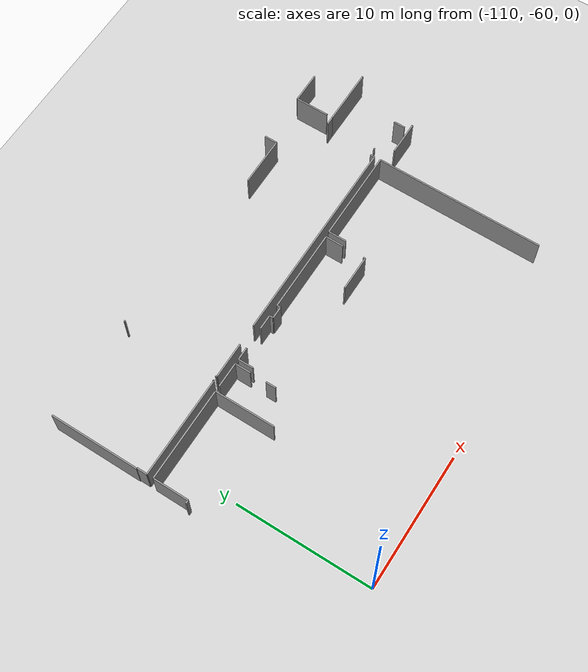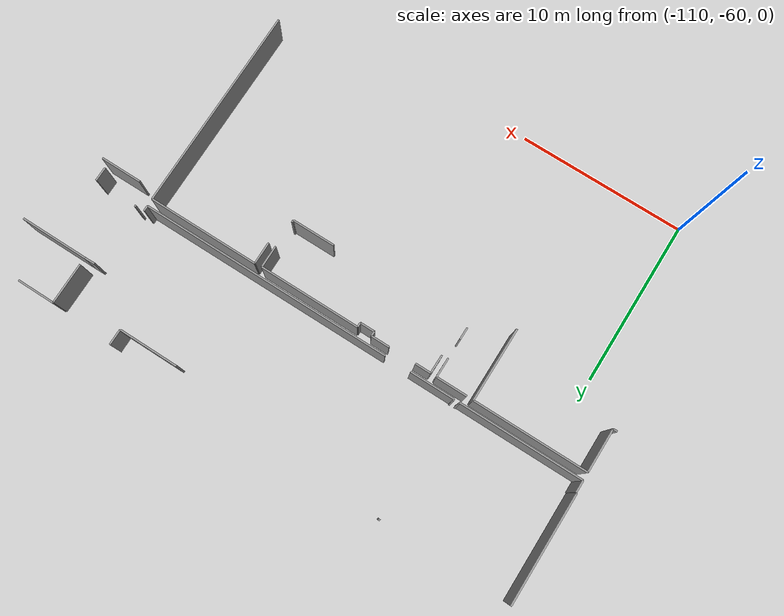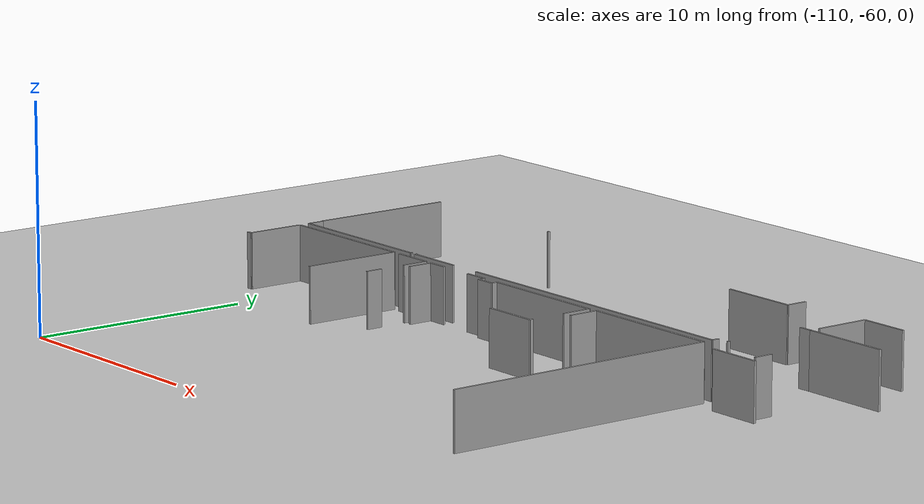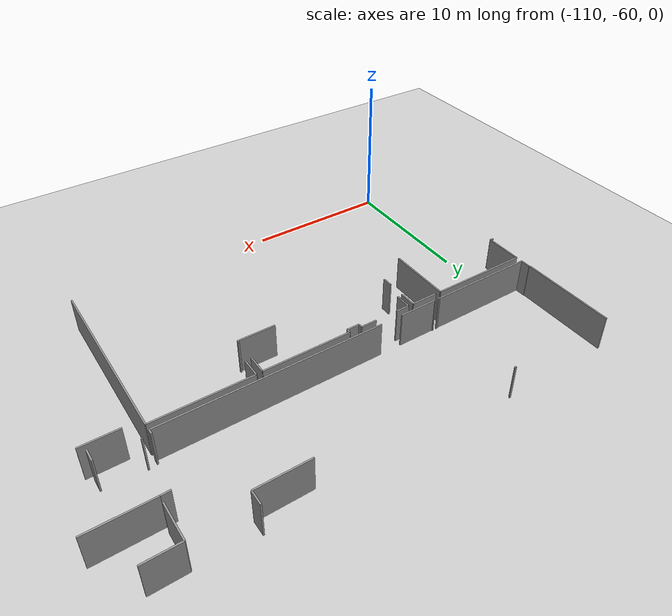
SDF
<sdf version="1.6">
 <world name="default">
  <model name="ground_plane">
   <static>1</static>
   <link name="link">
    <collision name="collision">
     <geometry><plane><normal>0 0 1</normal><size>100 100</size></plane></geometry>
     <surface><friction><ode><mu>100</mu><mu2>50</mu2></ode></friction></surface>
    </collision>
    <visual name="visual">
     <cast_shadows>0</cast_shadows>
     <geometry><plane><normal>0 0 1</normal><size>100 100</size></plane></geometry>
     <material>
      <script><uri>file://media/materials/scripts/gazebo.material</uri><name>Gazebo/Grey</name></script>
     </material>
    </visual>
   </link>
  </model>
  <model name="0510035520_A_40_1_103">
   <static>1</static>
   <link name="Wall_439">
    <collision name="Wall_439_Collision">
     <geometry><box><size>0.0865476741899 0.1 2.5</size></box></geometry>
     <pose>0.0432738370949 0 1.25 0 0 0</pose>
    </collision>
    <visual name="Wall_439_Visual">
     <pose>0.0432738370949 0 1.25 0 0 0</pose>
     <geometry><box><size>0.0865476741899 0.1 2.5</size></box></geometry>
     <material>
      <script><uri>file://media/materials/scripts/gazebo.material</uri><name>Gazebo/Grey</name></script>
      <ambient>1 1 1 1</ambient>
     </material>
    </visual>
    <pose>7.60781974734 -113.361209637 0 0 0 -1.57079632679</pose>
   </link>
   <link name="Wall_440">
    <collision name="Wall_440_Collision">
     <geometry><box><size>7.35528327866 0.1 2.5</size></box></geometry>
     <pose>3.67764163933 0 1.25 0 0 0</pose>
    </collision>
    <visual name="Wall_440_Visual">
     <pose>3.67764163933 0 1.25 0 0 0</pose>
     <geometry><box><size>7.35528327866 0.1 2.5</size></box></geometry>
     <material>
      <script><uri>file://media/materials/scripts/gazebo.material</uri><name>Gazebo/Grey</name></script>
      <ambient>1 1 1 1</ambient>
     </material>
    </visual>
    <pose>7.60781974734 -113.447757311 0 0 0 3.14159265359</pose>
   </link>
   <link name="Wall_441">
    <collision name="Wall_441_Collision">
     <geometry><box><size>0.728421773974 0.1 2.5</size></box></geometry>
     <pose>0.364210886987 0 1.25 0 0 0</pose>
    </collision>
    <visual name="Wall_441_Visual">
     <pose>0.364210886987 0 1.25 0 0 0</pose>
     <geometry><box><size>0.728421773974 0.1 2.5</size></box></geometry>
     <material>
      <script><uri>file://media/materials/scripts/gazebo.material</uri><name>Gazebo/Grey</name></script>
      <ambient>1 1 1 1</ambient>
     </material>
    </visual>
    <pose>0.252536468677 -113.447757311 0 0 0 1.57079632679</pose>
   </link>
   <link name="Wall_442">
    <collision name="Wall_442_Collision">
     <geometry><box><size>0.0456849893084 0.1 2.5</size></box></geometry>
     <pose>0.0228424946542 0 1.25 0 0 0</pose>
    </collision>
    <visual name="Wall_442_Visual">
     <pose>0.0228424946542 0 1.25 0 0 0</pose>
     <geometry><box><size>0.0456849893084 0.1 2.5</size></box></geometry>
     <material>
      <script><uri>file://media/materials/scripts/gazebo.material</uri><name>Gazebo/Grey</name></script>
      <ambient>1 1 1 1</ambient>
     </material>
    </visual>
    <pose>0.252536468677 -112.719335537 0 0 0 3.14159265359</pose>
   </link>
   <link name="Wall_443">
    <collision name="Wall_443_Collision">
     <geometry><box><size>6.5268621392 0.1 2.5</size></box></geometry>
     <pose>3.2634310696 0 1.25 0 0 0</pose>
    </collision>
    <visual name="Wall_443_Visual">
     <pose>3.2634310696 0 1.25 0 0 0</pose>
     <geometry><box><size>6.5268621392 0.1 2.5</size></box></geometry>
     <material>
      <script><uri>file://media/materials/scripts/gazebo.material</uri><name>Gazebo/Grey</name></script>
      <ambient>1 1 1 1</ambient>
     </material>
    </visual>
    <pose>0.206851479369 -112.719335537 0 0 0 1.57079632679</pose>
   </link>
   <link name="Wall_447">
    <collision name="Wall_447_Collision">
     <geometry><box><size>0.244668498296 0.1 2.5</size></box></geometry>
     <pose>0.122334249148 0 1.25 0 0 0</pose>
    </collision>
    <visual name="Wall_447_Visual">
     <pose>0.122334249148 0 1.25 0 0 0</pose>
     <geometry><box><size>0.244668498296 0.1 2.5</size></box></geometry>
     <material>
      <script><uri>file://media/materials/scripts/gazebo.material</uri><name>Gazebo/Grey</name></script>
      <ambient>1 1 1 1</ambient>
     </material>
    </visual>
    <pose>0.0106598308386 -116.529463646 0 0 0 0.0</pose>
   </link>
   <link name="Wall_448">
    <collision name="Wall_448_Collision">
     <geometry><box><size>2.60099872463 0.1 2.5</size></box></geometry>
     <pose>1.30049936231 0 1.25 0 0 0</pose>
    </collision>
    <visual name="Wall_448_Visual">
     <pose>1.30049936231 0 1.25 0 0 0</pose>
     <geometry><box><size>2.60099872463 0.1 2.5</size></box></geometry>
     <material>
      <script><uri>file://media/materials/scripts/gazebo.material</uri><name>Gazebo/Grey</name></script>
      <ambient>1 1 1 1</ambient>
     </material>
    </visual>
    <pose>0.255328329135 -116.529463646 0 0 0 1.57079632679</pose>
   </link>
   <link name="Wall_449">
    <collision name="Wall_449_Collision">
     <geometry><box><size>6.81264712787 0.1 2.5</size></box></geometry>
     <pose>3.40632356394 0 1.25 0 0 0</pose>
    </collision>
    <visual name="Wall_449_Visual">
     <pose>3.40632356394 0 1.25 0 0 0</pose>
     <geometry><box><size>6.81264712787 0.1 2.5</size></box></geometry>
     <material>
      <script><uri>file://media/materials/scripts/gazebo.material</uri><name>Gazebo/Grey</name></script>
      <ambient>1 1 1 1</ambient>
     </material>
    </visual>
    <pose>0.255328329135 -113.928464921 0 0 0 0.0</pose>
   </link>
   <link name="Wall_450">
    <collision name="Wall_450_Collision">
     <geometry><box><size>4.42205315956 0.1 2.5</size></box></geometry>
     <pose>2.21102657978 0 1.25 0 0 0</pose>
    </collision>
    <visual name="Wall_450_Visual">
     <pose>2.21102657978 0 1.25 0 0 0</pose>
     <geometry><box><size>4.42205315956 0.1 2.5</size></box></geometry>
     <material>
      <script><uri>file://media/materials/scripts/gazebo.material</uri><name>Gazebo/Grey</name></script>
      <ambient>1 1 1 1</ambient>
     </material>
    </visual>
    <pose>7.06797545701 -113.928464921 0 0 0 -1.57079632679</pose>
   </link>
   <link name="Wall_466">
    <collision name="Wall_466_Collision">
     <geometry><box><size>1.84922684501 0.1 2.5</size></box></geometry>
     <pose>0.924613422504 0 1.25 0 0 0</pose>
    </collision>
    <visual name="Wall_466_Visual">
     <pose>0.924613422504 0 1.25 0 0 0</pose>
     <geometry><box><size>1.84922684501 0.1 2.5</size></box></geometry>
     <material>
      <script><uri>file://media/materials/scripts/gazebo.material</uri><name>Gazebo/Grey</name></script>
      <ambient>1 1 1 1</ambient>
     </material>
    </visual>
    <pose>7.46035875407 -113.936332891 0 0 0 0.0</pose>
   </link>
   <link name="Wall_467">
    <collision name="Wall_467_Collision">
     <geometry><box><size>1.16192156141 0.1 2.5</size></box></geometry>
     <pose>0.580960780706 0 1.25 0 0 0</pose>
    </collision>
    <visual name="Wall_467_Visual">
     <pose>0.580960780706 0 1.25 0 0 0</pose>
     <geometry><box><size>1.16192156141 0.1 2.5</size></box></geometry>
     <material>
      <script><uri>file://media/materials/scripts/gazebo.material</uri><name>Gazebo/Grey</name></script>
      <ambient>1 1 1 1</ambient>
     </material>
    </visual>
    <pose>9.30958559908 -113.936332891 0 0 0 -1.57079632679</pose>
   </link>
   <link name="Wall_468">
    <collision name="Wall_468_Collision">
     <geometry><box><size>0.731213634431 0.1 2.5</size></box></geometry>
     <pose>0.365606817216 0 1.25 0 0 0</pose>
    </collision>
    <visual name="Wall_468_Visual">
     <pose>0.365606817216 0 1.25 0 0 0</pose>
     <geometry><box><size>0.731213634431 0.1 2.5</size></box></geometry>
     <material>
      <script><uri>file://media/materials/scripts/gazebo.material</uri><name>Gazebo/Grey</name></script>
      <ambient>1 1 1 1</ambient>
     </material>
    </visual>
    <pose>9.30958559908 -116.282003287 0 0 0 -1.57079632679</pose>
   </link>
   <link name="Wall_470">
    <collision name="Wall_470_Collision">
     <geometry><box><size>0.935019447846 0.1 2.5</size></box></geometry>
     <pose>0.467509723923 0 1.25 0 0 0</pose>
    </collision>
    <visual name="Wall_470_Visual">
     <pose>0.467509723923 0 1.25 0 0 0</pose>
     <geometry><box><size>0.935019447846 0.1 2.5</size></box></geometry>
     <material>
      <script><uri>file://media/materials/scripts/gazebo.material</uri><name>Gazebo/Grey</name></script>
      <ambient>1 1 1 1</ambient>
     </material>
    </visual>
    <pose>9.67278126408 -113.943693251 0 0 0 0.0</pose>
   </link>
   <link name="Wall_471">
    <collision name="Wall_471_Collision">
     <geometry><box><size>1.0966935489 0.1 2.5</size></box></geometry>
     <pose>0.548346774449 0 1.25 0 0 0</pose>
    </collision>
    <visual name="Wall_471_Visual">
     <pose>0.548346774449 0 1.25 0 0 0</pose>
     <geometry><box><size>1.0966935489 0.1 2.5</size></box></geometry>
     <material>
      <script><uri>file://media/materials/scripts/gazebo.material</uri><name>Gazebo/Grey</name></script>
      <ambient>1 1 1 1</ambient>
     </material>
    </visual>
    <pose>12.2118514476 -113.943693251 0 0 0 0.0</pose>
   </link>
   <link name="Wall_472">
    <collision name="Wall_472_Collision">
     <geometry><box><size>0.27614037982 0.1 2.5</size></box></geometry>
     <pose>0.13807018991 0 1.25 0 0 0</pose>
    </collision>
    <visual name="Wall_472_Visual">
     <pose>0.13807018991 0 1.25 0 0 0</pose>
     <geometry><box><size>0.27614037982 0.1 2.5</size></box></geometry>
     <material>
      <script><uri>file://media/materials/scripts/gazebo.material</uri><name>Gazebo/Grey</name></script>
      <ambient>1 1 1 1</ambient>
     </material>
    </visual>
    <pose>13.3085449965 -113.943693251 0 0 0 -1.57079632679</pose>
   </link>
   <link name="Wall_473">
    <collision name="Wall_473_Collision">
     <geometry><box><size>0.873598517776 0.1 2.5</size></box></geometry>
     <pose>0.436799258888 0 1.25 0 0 0</pose>
    </collision>
    <visual name="Wall_473_Visual">
     <pose>0.436799258888 0 1.25 0 0 0</pose>
     <geometry><box><size>0.873598517776 0.1 2.5</size></box></geometry>
     <material>
      <script><uri>file://media/materials/scripts/gazebo.material</uri><name>Gazebo/Grey</name></script>
      <ambient>1 1 1 1</ambient>
     </material>
    </visual>
    <pose>13.3085449965 -114.21983363 0 0 0 0.0</pose>
   </link>
   <link name="Wall_474">
    <collision name="Wall_474_Collision">
     <geometry><box><size>0.271825686385 0.1 2.5</size></box></geometry>
     <pose>0.135912843193 0 1.25 0 0 0</pose>
    </collision>
    <visual name="Wall_474_Visual">
     <pose>0.135912843193 0 1.25 0 0 0</pose>
     <geometry><box><size>0.271825686385 0.1 2.5</size></box></geometry>
     <material>
      <script><uri>file://media/materials/scripts/gazebo.material</uri><name>Gazebo/Grey</name></script>
      <ambient>1 1 1 1</ambient>
     </material>
    </visual>
    <pose>14.1821435143 -114.21983363 0 0 0 1.57079632679</pose>
   </link>
   <link name="Wall_475">
    <collision name="Wall_475_Collision">
     <geometry><box><size>6.0248348678 0.1 2.5</size></box></geometry>
     <pose>3.0124174339 0 1.25 0 0 0</pose>
    </collision>
    <visual name="Wall_475_Visual">
     <pose>3.0124174339 0 1.25 0 0 0</pose>
     <geometry><box><size>6.0248348678 0.1 2.5</size></box></geometry>
     <material>
      <script><uri>file://media/materials/scripts/gazebo.material</uri><name>Gazebo/Grey</name></script>
      <ambient>1 1 1 1</ambient>
     </material>
    </visual>
    <pose>14.1821435143 -113.948007944 0 0 0 0.0</pose>
   </link>
   <link name="Wall_476">
    <collision name="Wall_476_Collision">
     <geometry><box><size>1.32334185697 0.1 2.5</size></box></geometry>
     <pose>0.661670928484 0 1.25 0 0 0</pose>
    </collision>
    <visual name="Wall_476_Visual">
     <pose>0.661670928484 0 1.25 0 0 0</pose>
     <geometry><box><size>1.32334185697 0.1 2.5</size></box></geometry>
     <material>
      <script><uri>file://media/materials/scripts/gazebo.material</uri><name>Gazebo/Grey</name></script>
      <ambient>1 1 1 1</ambient>
     </material>
    </visual>
    <pose>20.2069783821 -113.948007944 0 0 0 -1.57079632679</pose>
   </link>
   <link name="Wall_477">
    <collision name="Wall_477_Collision">
     <geometry><box><size>0.141877272352 0.1 2.5</size></box></geometry>
     <pose>0.0709386361762 0 1.25 0 0 0</pose>
    </collision>
    <visual name="Wall_477_Visual">
     <pose>0.0709386361762 0 1.25 0 0 0</pose>
     <geometry><box><size>0.141877272352 0.1 2.5</size></box></geometry>
     <material>
      <script><uri>file://media/materials/scripts/gazebo.material</uri><name>Gazebo/Grey</name></script>
      <ambient>1 1 1 1</ambient>
     </material>
    </visual>
    <pose>20.2069783821 -116.854842292 0 0 0 -1.57079632679</pose>
   </link>
   <link name="Wall_478">
    <collision name="Wall_478_Collision">
     <geometry><box><size>2.57130348158 0.1 2.5</size></box></geometry>
     <pose>1.28565174079 0 1.25 0 0 0</pose>
    </collision>
    <visual name="Wall_478_Visual">
     <pose>1.28565174079 0 1.25 0 0 0</pose>
     <geometry><box><size>2.57130348158 0.1 2.5</size></box></geometry>
     <material>
      <script><uri>file://media/materials/scripts/gazebo.material</uri><name>Gazebo/Grey</name></script>
      <ambient>1 1 1 1</ambient>
     </material>
    </visual>
    <pose>20.2069783821 -116.996719564 0 0 0 3.14159265359</pose>
   </link>
   <link name="Wall_482">
    <collision name="Wall_482_Collision">
     <geometry><box><size>1.11650079171 0.1 2.5</size></box></geometry>
     <pose>0.558250395856 0 1.25 0 0 0</pose>
    </collision>
    <visual name="Wall_482_Visual">
     <pose>0.558250395856 0 1.25 0 0 0</pose>
     <geometry><box><size>1.11650079171 0.1 2.5</size></box></geometry>
     <material>
      <script><uri>file://media/materials/scripts/gazebo.material</uri><name>Gazebo/Grey</name></script>
      <ambient>1 1 1 1</ambient>
     </material>
    </visual>
    <pose>9.66795895965 -115.060183628 0 0 0 1.56647719021</pose>
   </link>
   <link name="Wall_492">
    <collision name="Wall_492_Collision">
     <geometry><box><size>1.3347631043 0.1 2.5</size></box></geometry>
     <pose>0.667381552148 0 1.25 0 0 0</pose>
    </collision>
    <visual name="Wall_492_Visual">
     <pose>0.667381552148 0 1.25 0 0 0</pose>
     <geometry><box><size>1.3347631043 0.1 2.5</size></box></geometry>
     <material>
      <script><uri>file://media/materials/scripts/gazebo.material</uri><name>Gazebo/Grey</name></script>
      <ambient>1 1 1 1</ambient>
     </material>
    </visual>
    <pose>20.6282955057 -115.237086059 0 0 0 1.57079632679</pose>
   </link>
   <link name="Wall_493">
    <collision name="Wall_493_Collision">
     <geometry><box><size>6.64335886194 0.1 2.5</size></box></geometry>
     <pose>3.32167943097 0 1.25 0 0 0</pose>
    </collision>
    <visual name="Wall_493_Visual">
     <pose>3.32167943097 0 1.25 0 0 0</pose>
     <geometry><box><size>6.64335886194 0.1 2.5</size></box></geometry>
     <material>
      <script><uri>file://media/materials/scripts/gazebo.material</uri><name>Gazebo/Grey</name></script>
      <ambient>1 1 1 1</ambient>
     </material>
    </visual>
    <pose>20.6282955057 -113.902322955 0 0 0 0.0</pose>
   </link>
   <link name="Wall_494">
    <collision name="Wall_494_Collision">
     <geometry><box><size>12.3661651893 0.1 2.5</size></box></geometry>
     <pose>6.18308259465 0 1.25 0 0 0</pose>
    </collision>
    <visual name="Wall_494_Visual">
     <pose>6.18308259465 0 1.25 0 0 0</pose>
     <geometry><box><size>12.3661651893 0.1 2.5</size></box></geometry>
     <material>
      <script><uri>file://media/materials/scripts/gazebo.material</uri><name>Gazebo/Grey</name></script>
      <ambient>1 1 1 1</ambient>
     </material>
    </visual>
    <pose>27.2716543677 -113.902322955 0 0 0 -1.57079632679</pose>
   </link>
   <link name="Wall_528">
    <collision name="Wall_528_Collision">
     <geometry><box><size>3.58246457827 0.1 2.5</size></box></geometry>
     <pose>1.79123228914 0 1.25 0 0 0</pose>
    </collision>
    <visual name="Wall_528_Visual">
     <pose>1.79123228914 0 1.25 0 0 0</pose>
     <geometry><box><size>3.58246457827 0.1 2.5</size></box></geometry>
     <material>
      <script><uri>file://media/materials/scripts/gazebo.material</uri><name>Gazebo/Grey</name></script>
      <ambient>1 1 1 1</ambient>
     </material>
    </visual>
    <pose>21.0112879994 -107.142213565 0 0 0 0.0</pose>
   </link>
   <link name="Wall_529">
    <collision name="Wall_529_Collision">
     <geometry><box><size>0.949740166623 0.1 2.5</size></box></geometry>
     <pose>0.474870083312 0 1.25 0 0 0</pose>
    </collision>
    <visual name="Wall_529_Visual">
     <pose>0.474870083312 0 1.25 0 0 0</pose>
     <geometry><box><size>0.949740166623 0.1 2.5</size></box></geometry>
     <material>
      <script><uri>file://media/materials/scripts/gazebo.material</uri><name>Gazebo/Grey</name></script>
      <ambient>1 1 1 1</ambient>
     </material>
    </visual>
    <pose>24.5937525777 -107.142213565 0 0 0 1.57079632679</pose>
   </link>
   <link name="Wall_532">
    <collision name="Wall_532_Collision">
     <geometry><box><size>0.326393868059 0.1 2.5</size></box></geometry>
     <pose>0.16319693403 0 1.25 0 0 0</pose>
    </collision>
    <visual name="Wall_532_Visual">
     <pose>0.16319693403 0 1.25 0 0 0</pose>
     <geometry><box><size>0.326393868059 0.1 2.5</size></box></geometry>
     <material>
      <script><uri>file://media/materials/scripts/gazebo.material</uri><name>Gazebo/Grey</name></script>
      <ambient>1 1 1 1</ambient>
     </material>
    </visual>
    <pose>27.251349928 -113.120602027 0 0 0 -1.57079632679</pose>
   </link>
   <link name="Wall_533">
    <collision name="Wall_533_Collision">
     <geometry><box><size>15.1047264929 0.1 2.5</size></box></geometry>
     <pose>7.55236324643 0 1.25 0 0 0</pose>
    </collision>
    <visual name="Wall_533_Visual">
     <pose>7.55236324643 0 1.25 0 0 0</pose>
     <geometry><box><size>15.1047264929 0.1 2.5</size></box></geometry>
     <material>
      <script><uri>file://media/materials/scripts/gazebo.material</uri><name>Gazebo/Grey</name></script>
      <ambient>1 1 1 1</ambient>
     </material>
    </visual>
    <pose>27.251349928 -113.446995895 0 0 0 3.14159265359</pose>
   </link>
   <link name="Wall_534">
    <collision name="Wall_534_Collision">
     <geometry><box><size>2.65226743485 0.1 2.5</size></box></geometry>
     <pose>1.32613371743 0 1.25 0 0 0</pose>
    </collision>
    <visual name="Wall_534_Visual">
     <pose>1.32613371743 0 1.25 0 0 0</pose>
     <geometry><box><size>2.65226743485 0.1 2.5</size></box></geometry>
     <material>
      <script><uri>file://media/materials/scripts/gazebo.material</uri><name>Gazebo/Grey</name></script>
      <ambient>1 1 1 1</ambient>
     </material>
    </visual>
    <pose>10.5915571602 -113.446995895 0 0 0 3.14159265359</pose>
   </link>
   <link name="Wall_535">
    <collision name="Wall_535_Collision">
     <geometry><box><size>0.101522198463 0.1 2.5</size></box></geometry>
     <pose>0.0507610992316 0 1.25 0 0 0</pose>
    </collision>
    <visual name="Wall_535_Visual">
     <pose>0.0507610992316 0 1.25 0 0 0</pose>
     <geometry><box><size>0.101522198463 0.1 2.5</size></box></geometry>
     <material>
      <script><uri>file://media/materials/scripts/gazebo.material</uri><name>Gazebo/Grey</name></script>
      <ambient>1 1 1 1</ambient>
     </material>
    </visual>
    <pose>7.93928972532 -113.446995895 0 0 0 1.57079632679</pose>
   </link>
   <link name="Wall_536">
    <collision name="Wall_536_Collision">
     <geometry><box><size>0.0987724124709 0.1 2.5</size></box></geometry>
     <pose>0.0493862062355 0 1.25 0 0 0</pose>
    </collision>
    <visual name="Wall_536_Visual">
     <pose>0.0493862062355 0 1.25 0 0 0</pose>
     <geometry><box><size>0.0987724124709 0.1 2.5</size></box></geometry>
     <material>
      <script><uri>file://media/materials/scripts/gazebo.material</uri><name>Gazebo/Grey</name></script>
      <ambient>1 1 1 1</ambient>
     </material>
    </visual>
    <pose>7.93928972532 -106.267599825 0 0 0 1.46524689321</pose>
   </link>
   <link name="Wall_551">
    <collision name="Wall_551_Collision">
     <geometry><box><size>2.45303012037 0.1 2.5</size></box></geometry>
     <pose>1.22651506018 0 1.25 0 0 0</pose>
    </collision>
    <visual name="Wall_551_Visual">
     <pose>1.22651506018 0 1.25 0 0 0</pose>
     <geometry><box><size>2.45303012037 0.1 2.5</size></box></geometry>
     <material>
      <script><uri>file://media/materials/scripts/gazebo.material</uri><name>Gazebo/Grey</name></script>
      <ambient>1 1 1 1</ambient>
     </material>
    </visual>
    <pose>28.408956796 -108.871898021 0 0 0 1.57079632679</pose>
   </link>
   <link name="Wall_552">
    <collision name="Wall_552_Collision">
     <geometry><box><size>2.24846289046 0.1 2.5</size></box></geometry>
     <pose>1.12423144523 0 1.25 0 0 0</pose>
    </collision>
    <visual name="Wall_552_Visual">
     <pose>1.12423144523 0 1.25 0 0 0</pose>
     <geometry><box><size>2.24846289046 0.1 2.5</size></box></geometry>
     <material>
      <script><uri>file://media/materials/scripts/gazebo.material</uri><name>Gazebo/Grey</name></script>
      <ambient>1 1 1 1</ambient>
     </material>
    </visual>
    <pose>28.408956796 -106.418867901 0 0 0 0.0</pose>
   </link>
   <link name="Wall_786">
    <collision name="Wall_786_Collision">
     <geometry><box><size>2.46749703365 0.1 2.5</size></box></geometry>
     <pose>1.23374851682 0 1.25 0 0 0</pose>
    </collision>
    <visual name="Wall_786_Visual">
     <pose>1.23374851682 0 1.25 0 0 0</pose>
     <geometry><box><size>2.46749703365 0.1 2.5</size></box></geometry>
     <material>
      <script><uri>file://media/materials/scripts/gazebo.material</uri><name>Gazebo/Grey</name></script>
      <ambient>1 1 1 1</ambient>
     </material>
    </visual>
    <pose>28.3899213837 -114.349782045 0 0 0 0.0</pose>
   </link>
   <link name="Wall_793">
    <collision name="Wall_793_Collision">
     <geometry><box><size>4.07459343532 0.1 2.5</size></box></geometry>
     <pose>2.03729671766 0 1.25 0 0 0</pose>
    </collision>
    <visual name="Wall_793_Visual">
     <pose>2.03729671766 0 1.25 0 0 0</pose>
     <geometry><box><size>4.07459343532 0.1 2.5</size></box></geometry>
     <material>
      <script><uri>file://media/materials/scripts/gazebo.material</uri><name>Gazebo/Grey</name></script>
      <ambient>1 1 1 1</ambient>
     </material>
    </visual>
    <pose>28.3861143013 -109.299814087 0 0 0 0.0</pose>
   </link>
   <link name="Wall_870">
    <collision name="Wall_870_Collision">
     <geometry><box><size>0.840603803275 0.1 2.5</size></box></geometry>
     <pose>0.420301901638 0 1.25 0 0 0</pose>
    </collision>
    <visual name="Wall_870_Visual">
     <pose>0.420301901638 0 1.25 0 0 0</pose>
     <geometry><box><size>0.840603803275 0.1 2.5</size></box></geometry>
     <material>
      <script><uri>file://media/materials/scripts/gazebo.material</uri><name>Gazebo/Grey</name></script>
      <ambient>1 1 1 1</ambient>
     </material>
    </visual>
    <pose>30.4173196871 -113.978210798 0 0 0 1.57079632679</pose>
   </link>
   <link name="Wall_872">
    <collision name="Wall_872_Collision">
     <geometry><box><size>0.101522198463 0.1 2.5</size></box></geometry>
     <pose>0.0507610992316 0 1.25 0 0 0</pose>
    </collision>
    <visual name="Wall_872_Visual">
     <pose>0.0507610992316 0 1.25 0 0 0</pose>
     <geometry><box><size>0.101522198463 0.1 2.5</size></box></geometry>
     <material>
      <script><uri>file://media/materials/scripts/gazebo.material</uri><name>Gazebo/Grey</name></script>
      <ambient>1 1 1 1</ambient>
     </material>
    </visual>
    <pose>27.7977931612 -113.137606995 0 0 0 1.57079632679</pose>
   </link>
   <link name="Wall_873">
    <collision name="Wall_873_Collision">
     <geometry><box><size>0.588524817144 0.1 2.5</size></box></geometry>
     <pose>0.294262408572 0 1.25 0 0 0</pose>
    </collision>
    <visual name="Wall_873_Visual">
     <pose>0.294262408572 0 1.25 0 0 0</pose>
     <geometry><box><size>0.588524817144 0.1 2.5</size></box></geometry>
     <material>
      <script><uri>file://media/materials/scripts/gazebo.material</uri><name>Gazebo/Grey</name></script>
      <ambient>1 1 1 1</ambient>
     </material>
    </visual>
    <pose>27.7977931612 -109.315296223 0 0 0 0.026309717253</pose>
   </link>
   <pose>-112.2 68.6448144365 0 0 0 0</pose>
  </model>
 </world>
</sdf>
